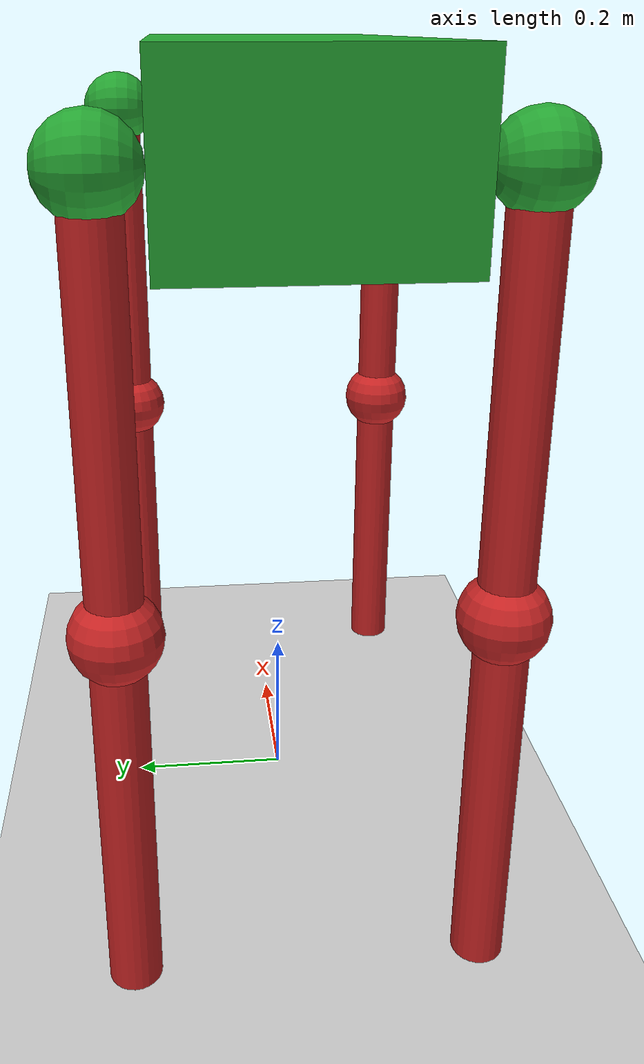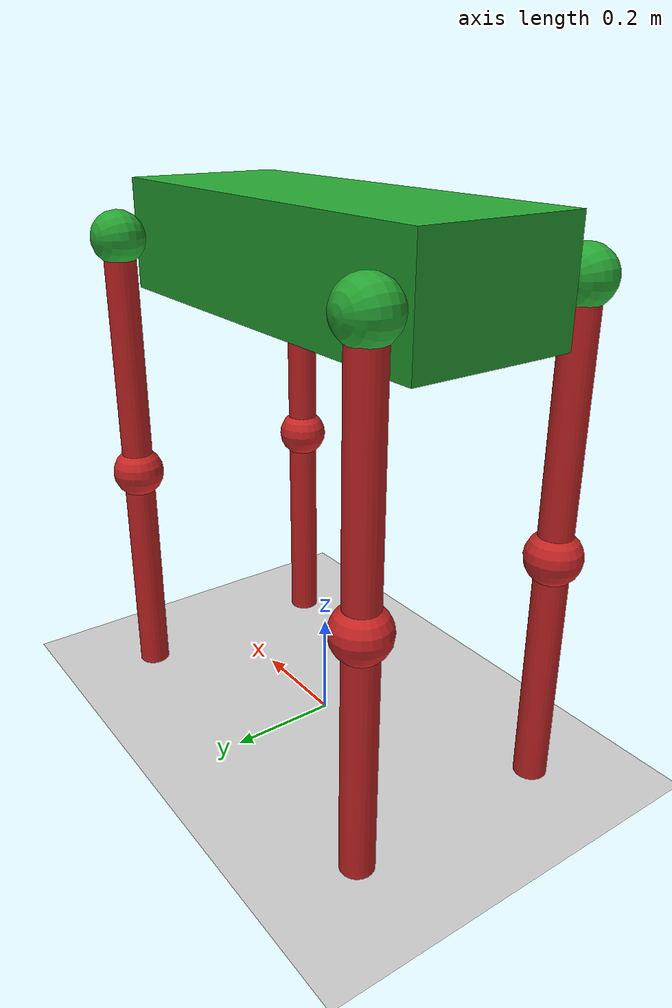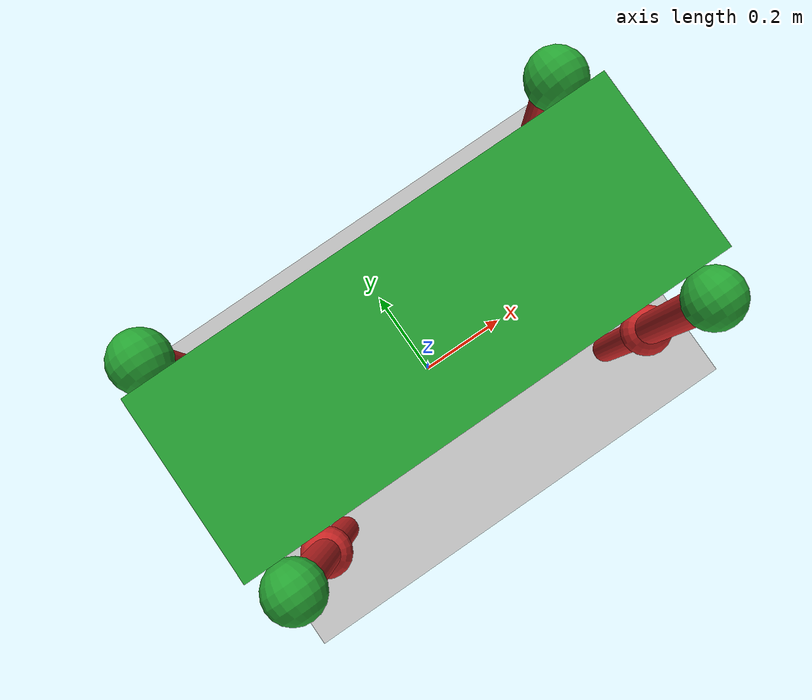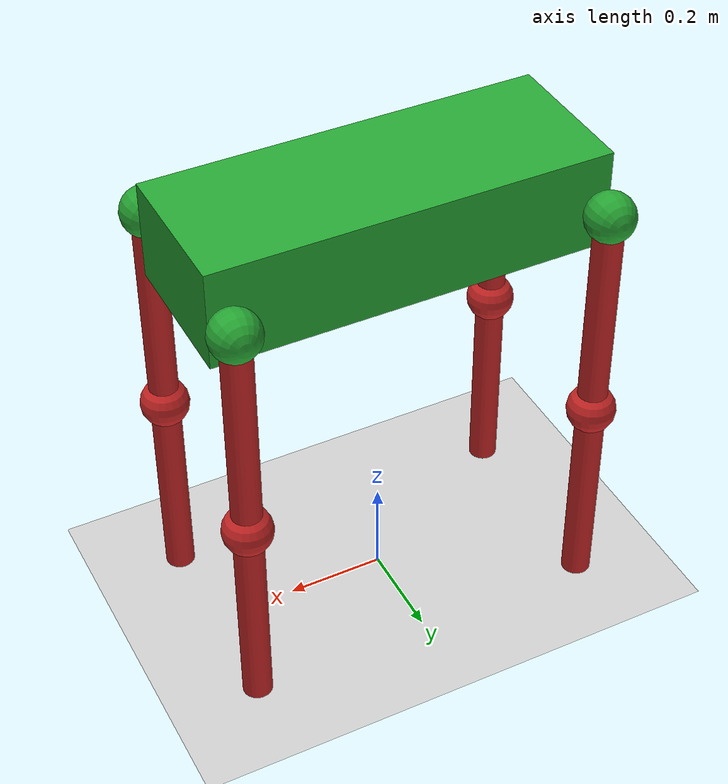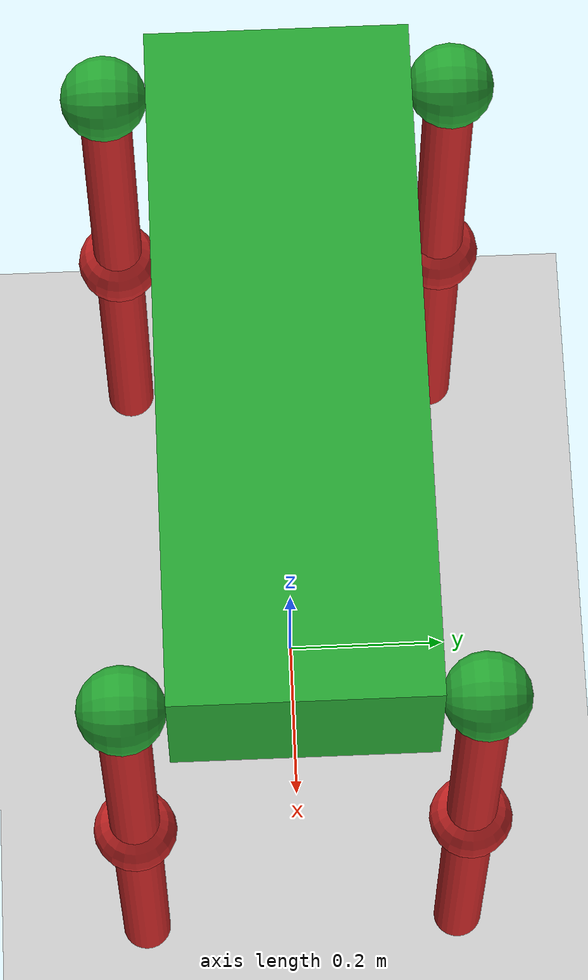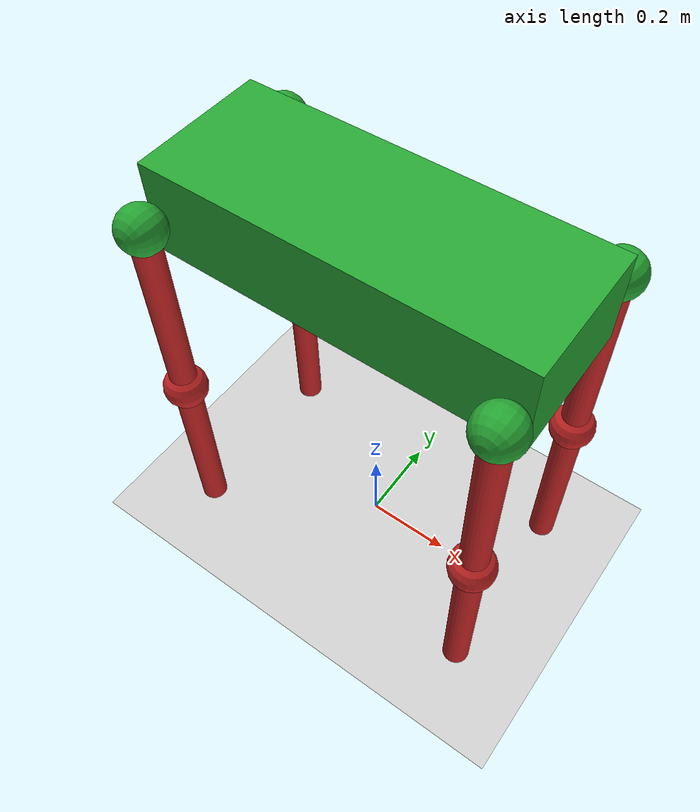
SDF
<?xml version="1.0" ?>
<sdf version="1.6">
  <world name="agile_robot_world">
    <!-- A global light source -->
    <include>
      <uri>model://sun</uri>
    </include>
    <!-- A ground plane -->
    <include>
      <uri>model://ground_plane</uri>
    </include>

    <model name="agile_robot">
      <!-- The kinect camera -->

      <include>
        <pose>0 0 -0.1 0 0 0</pose>
        <uri>model://agile_robot</uri>
      </include>

      <!-- plugin name="agile_plugin" filename="libagile_plugin.so" -->
      <plugin name="agile_robot_plugin" filename="libagile_gazebo_robot_plugin.so">
        <config name="configures for GzAgilePlugin" >
          <leg_node_ipc_name>leg_node</leg_node_ipc_name>
          <cmd_ipc_name>cmds</cmd_ipc_name>

          <FL_node_id>0x02</FL_node_id>
          <FL_YAW_linear_scale>1</FL_YAW_linear_scale>
          <FL_YAW_linear_offset>16290</FL_YAW_linear_offset>
          <FL_HIP_linear_scale>-1</FL_HIP_linear_scale>
          <FL_HIP_linear_offset>23079</FL_HIP_linear_offset>
          <FL_KNEE_linear_scale>1</FL_KNEE_linear_scale>
          <FL_KNEE_linear_offset>28734</FL_KNEE_linear_offset>

          <HL_node_id>0x03</HL_node_id>
          <HL_YAW_linear_scale>-1</HL_YAW_linear_scale>
          <HL_YAW_linear_offset>19445</HL_YAW_linear_offset>
          <HL_HIP_linear_scale>-1</HL_HIP_linear_scale>
          <HL_HIP_linear_offset>5802</HL_HIP_linear_offset>
          <HL_KNEE_linear_scale>1</HL_KNEE_linear_scale>
          <HL_KNEE_linear_offset>20747</HL_KNEE_linear_offset>

          <FR_node_id>0x04</FR_node_id>
          <FR_YAW_linear_scale>1</FR_YAW_linear_scale>
          <FR_YAW_linear_offset>18206</FR_YAW_linear_offset>
          <FR_HIP_linear_scale>1</FR_HIP_linear_scale>
          <FR_HIP_linear_offset>11260</FR_HIP_linear_offset>
          <FR_KNEE_linear_scale>-1</FR_KNEE_linear_scale>
          <FR_KNEE_linear_offset>11897</FR_KNEE_linear_offset>

          <HR_node_id>0x05</HR_node_id>
          <HR_YAW_linear_scale>-1</HR_YAW_linear_scale>
          <HR_YAW_linear_offset>16387</HR_YAW_linear_offset>
          <HR_HIP_linear_scale>1</HR_HIP_linear_scale>
          <HR_HIP_linear_offset>19563</HR_HIP_linear_offset>
          <HR_KNEE_linear_scale>-1</HR_KNEE_linear_scale>
          <HR_KNEE_linear_offset>19208</HR_KNEE_linear_offset>
        </config>
      </plugin>

    </model>

    <!-- Physics settings for simulation -->
    <gravity>0 0 -9.8</gravity>
    <physics type="ode">
      <max_step_size>0.001</max_step_size>
      <real_time_factor>1</real_time_factor>
      <real_time_update_rate>1000</real_time_update_rate>
      <ode>
        <solver>
          <type>quick</type>
          <iters>50</iters>
          <sor>1.4</sor>
        </solver>
        <constraints>
          <cfm>0</cfm>
          <erp>1</erp>
          <contact_max_correcting_vel>0</contact_max_correcting_vel>
          <contact_surface_layer>0</contact_surface_layer>
        </constraints>
      </ode>
    </physics>
  </world>
</sdf>
